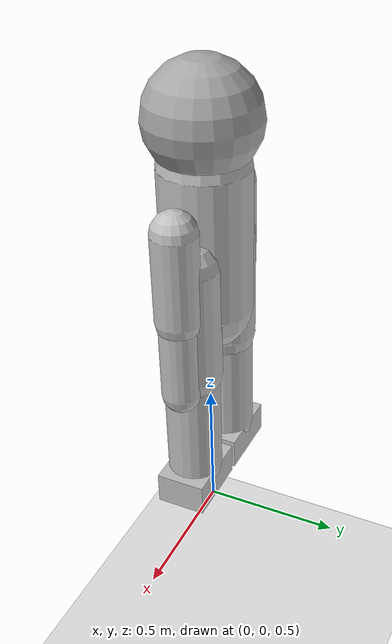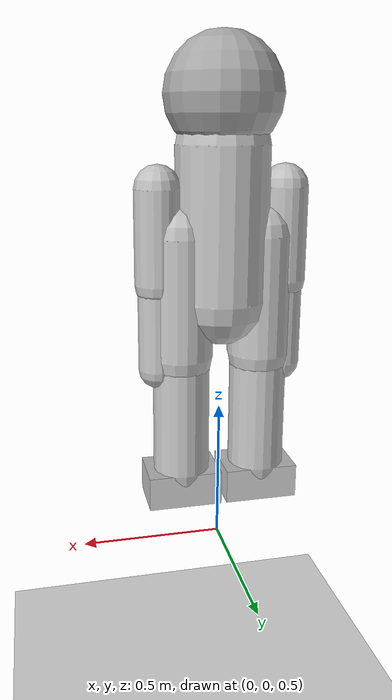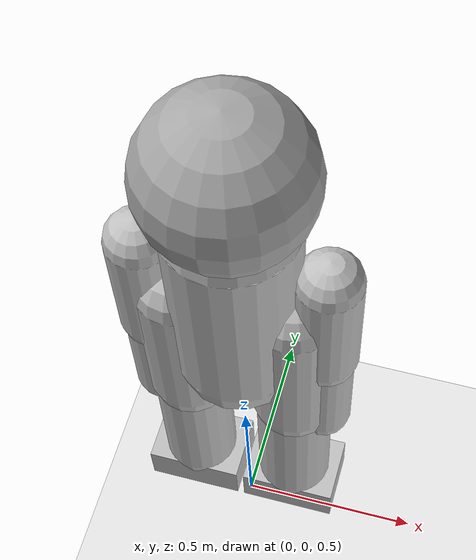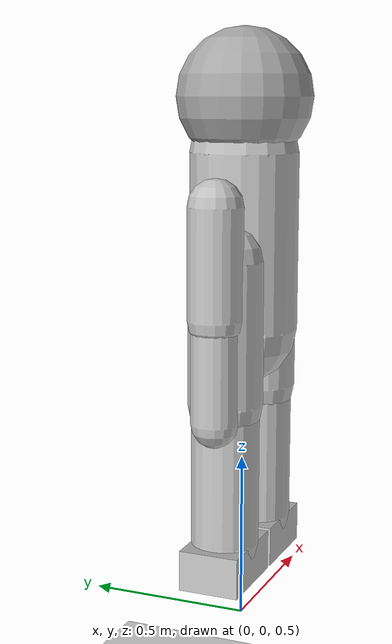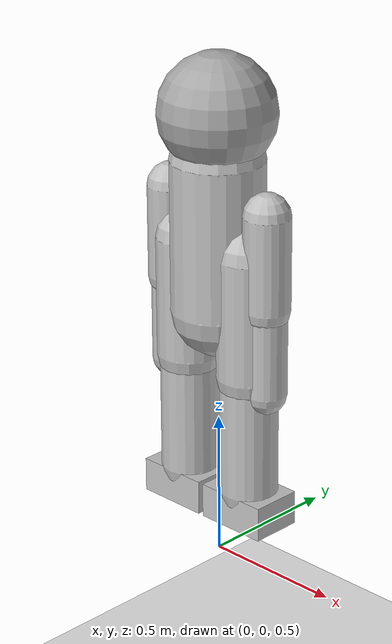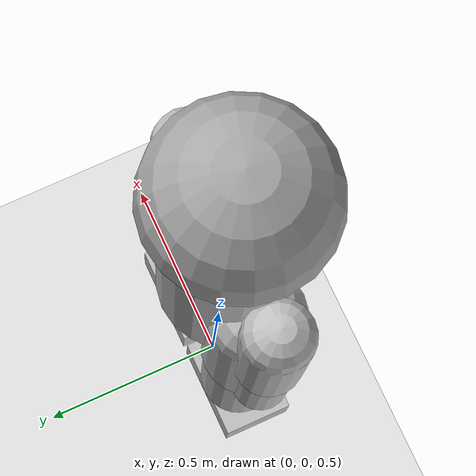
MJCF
<mujoco model="humanoid">
  <option timestep="0.005" gravity="0 0 -9.81"/>
  <default>
    <joint armature="0.1" damping="1" limited="true"/>
    <geom conaffinity="0" condim="3" friction="1.2 0.1 0.1" rgba="0.75 0.75 0.75 1"/>
  </default>

  <worldbody>
    <light pos="0 0 4" dir="0 0 -1" diffuse="1 1 1"/>
    <geom name="floor" type="plane" size="15 15 0.1" rgba="0.9 0.9 0.9 1"/>

    <body name="torso" pos="0 0 1.4">
      <!-- 躯干旋转 -->
      <joint type="hinge" axis="0 0 1" range="-40 40"/>
      <geom type="capsule" size="0.16 0.28" fromto="0 0 0 0 0 0.52"/>

      <!-- 颈部 + 头部 -->
      <body name="neck" pos="0 0 0.52">
        <joint name="neck_yaw" type="hinge" axis="0 0 1" range="-35 35"/>
        <geom type="capsule" size="0.09 0.12" fromto="0 0 0 0 0 0.16"/>
        <body name="head" pos="0 0 0.16">
          <geom type="sphere" size="0.2" rgba="0.65 0.65 0.65 1"/>
        </body>
      </body>

      <!-- 右臂 -->
      <body name="r_arm" pos="-0.22 0 0.38">
        <joint name="r_shoulder" type="hinge" axis="0 1 0" range="-55 55"/>
        <geom type="capsule" size="0.08 0.24" fromto="0 0 0 0 0 -0.32"/>
        <body name="r_forearm" pos="0 0 -0.32">
          <joint name="r_elbow" type="hinge" axis="0 1 0" range="0 85"/>
          <geom type="capsule" size="0.07 0.22" fromto="0 0 0 0 0 -0.3"/>
        </body>
      </body>

      <!-- 左臂 -->
      <body name="l_arm" pos="0.22 0 0.38">
        <joint name="l_shoulder" type="hinge" axis="0 1 0" range="-55 55"/>
        <geom type="capsule" size="0.08 0.24" fromto="0 0 0 0 0 -0.32"/>
        <body name="l_forearm" pos="0 0 -0.32">
          <joint name="l_elbow" type="hinge" axis="0 1 0" range="0 85"/>
          <geom type="capsule" size="0.07 0.22" fromto="0 0 0 0 0 -0.3"/>
        </body>
      </body>

      <!-- 右腿 -->
      <body name="r_leg" pos="-0.14 0 0.22">
        <joint type="hinge" axis="0 1 0" range="-40 40"/>
        <geom type="capsule" size="0.11 0.3" fromto="0 0 0 0 0 -0.42"/>
        <body pos="0 0 -0.42">
          <joint type="hinge" axis="0 1 0" range="-85 0"/>
          <geom type="capsule" size="0.10 0.3" fromto="0 0 0 0 0 -0.42"/>
          <body pos="0 0 -0.42">
            <joint type="hinge" axis="0 1 0" range="-25 25"/>
            <geom type="box" size="0.13 0.09 0.06" pos="0 0 -0.06"/>
          </body>
        </body>
      </body>

      <!-- 左腿 -->
      <body name="l_leg" pos="0.14 0 0.22">
        <joint type="hinge" axis="0 1 0" range="-40 40"/>
        <geom type="capsule" size="0.11 0.3" fromto="0 0 0 0 0 -0.42"/>
        <body pos="0 0 -0.42">
          <joint type="hinge" axis="0 1 0" range="-85 0"/>
          <geom type="capsule" size="0.10 0.3" fromto="0 0 0 0 0 -0.42"/>
          <body pos="0 0 -0.42">
            <joint type="hinge" axis="0 1 0" range="-25 25"/>
            <geom type="box" size="0.13 0.09 0.06" pos="0 0 -0.06"/>
          </body>
        </body>
      </body>
    </body>
  </worldbody>

  <actuator>
    <motor joint="neck_yaw" gear="90"/>
    <motor joint="r_shoulder" gear="75"/>
    <motor joint="r_elbow" gear="65"/>
    <motor joint="l_shoulder" gear="75"/>
    <motor joint="l_elbow" gear="65"/>
  </actuator>
</mujoco>
